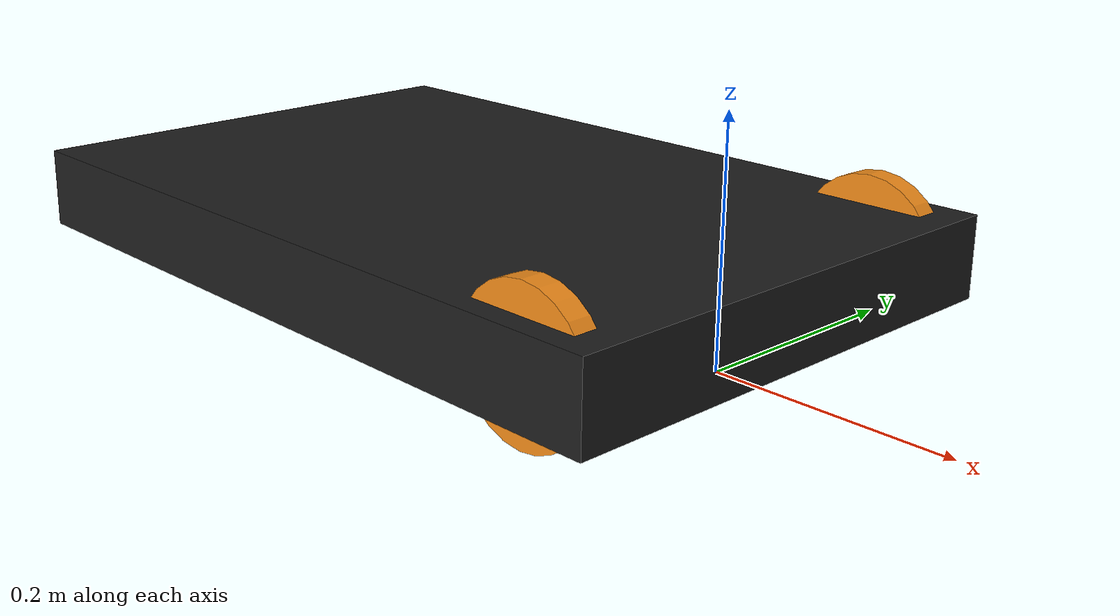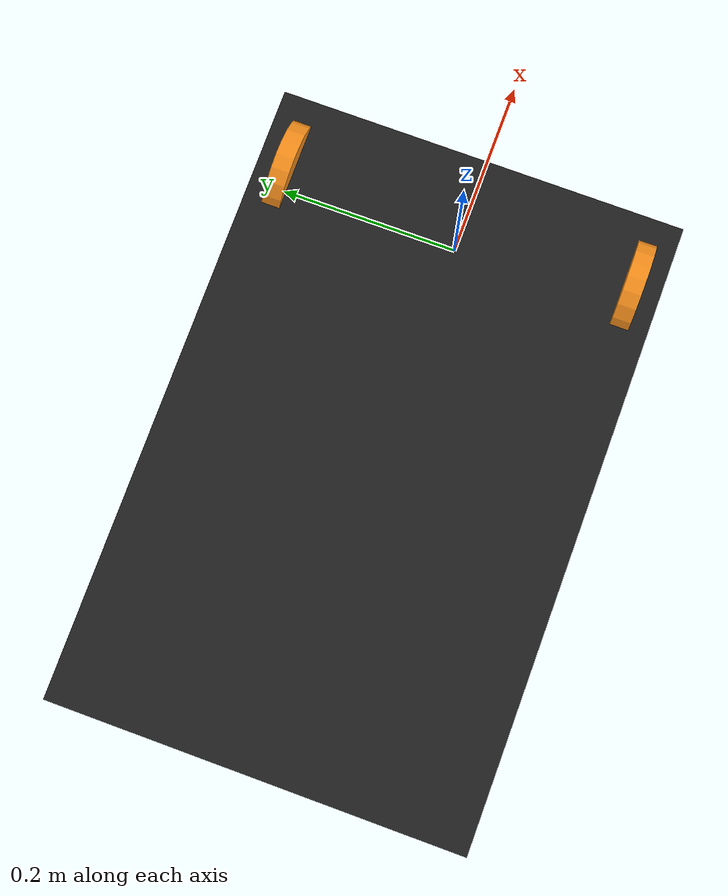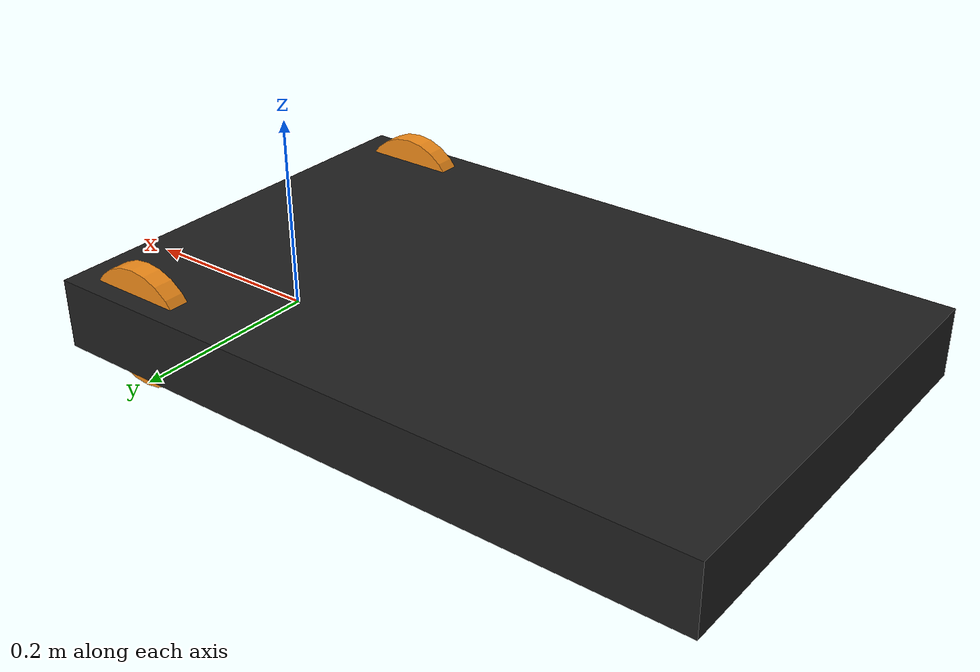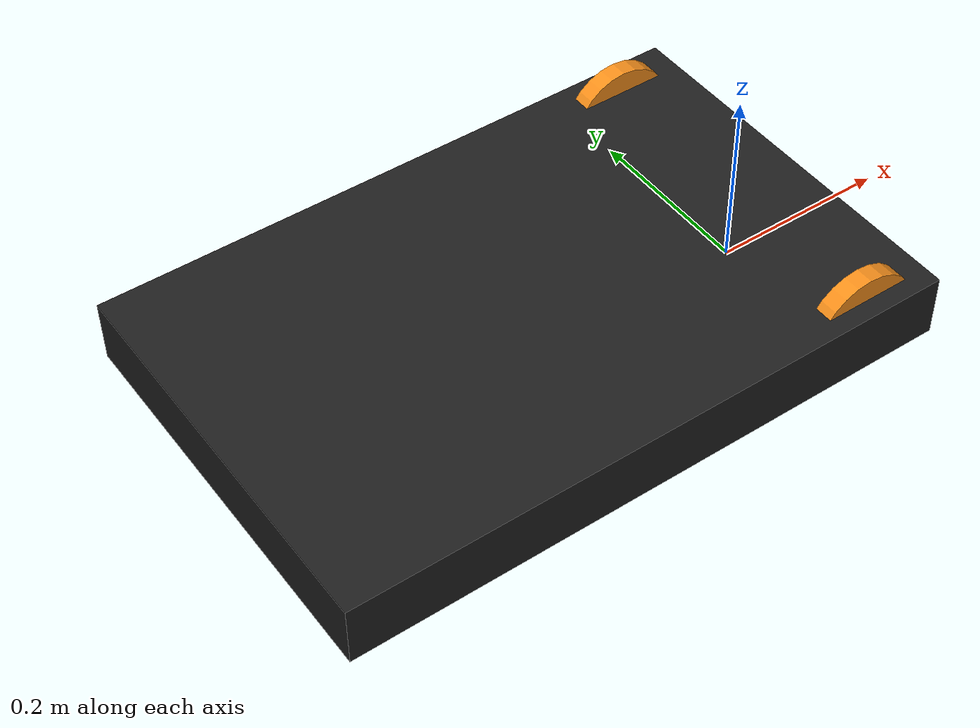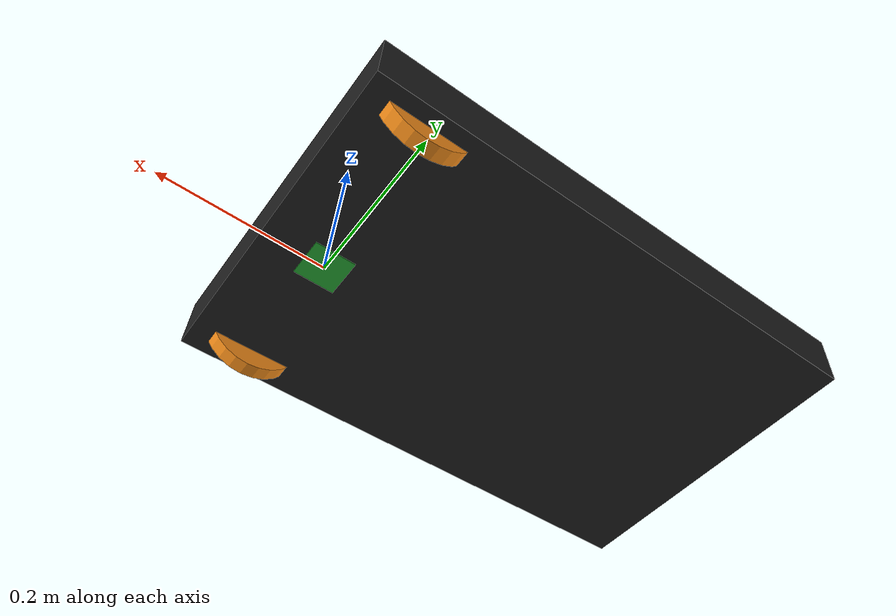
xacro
<?xml version="1.0"?>

<robot name="box_robot" xmlns:xacro="http://ros.org/wiki/xacro">

   <!-- Include all component files -->
   <xacro:include filename="$(find minireach_description)/urdf/materials.urdf.xacro" />
   <xacro:include filename="$(find minireach_description)/urdf/simple/base.urdf.xacro" />

   <!-- Add the base and wheels -->
   <base name="base" color="Black"/>

</robot>

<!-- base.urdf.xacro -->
<robot name="base" xmlns:xacro="http://ros.org/wiki/xacro">

  <!-- Define a number of dimensions using properties -->
  <property name="base_size_x" value="0.680" />
  <property name="base_size_y" value="0.445" />
  <property name="base_size_z" value="0.07" />
  <property name="wheel_length" value="0.02" />
  <property name="wheel_radius" value="0.06" />
  <property name="wheel_offset_x" value="0.265" />
  <property name="wheel_offset_y" value="0.1925" />
  <property name="wheel_offset_z" value="0" />

  <property name="PI" value="3.1415" />

  <!-- define a wheel -->
  <macro name="wheel" params="suffix parent reflect color">
    <joint name="${parent}_${suffix}_wheel_joint" type="continuous">
      <axis xyz="0 0 1" />
      <limit effort="100" velocity="100"/>
      <safety_controller k_velocity="10" />
      <origin xyz="${wheel_offset_x} ${reflect*wheel_offset_y} ${wheel_offset_z}" rpy="${reflect*PI/2} 0 0" />
      <parent link="${parent}_link"/>
      <child link="${parent}_${suffix}_wheel_link"/>
    </joint>
    <link name="${parent}_${suffix}_wheel_link">
      <visual>
        <origin xyz="0 0 0" rpy="0 0 0" />
        <geometry>
          <cylinder radius="${wheel_radius}" length="${wheel_length}"/>
        </geometry>
        <material name="${color}" />
      </visual>
    </link>
  </macro>

  <!-- The base xacro macro -->
  <macro name="base" params="name color">
    <link name="${name}_link">
      <visual>
        <origin xyz="0 0 0" rpy="0 0 0" />
        <geometry>
          <box size="${base_size_x} ${base_size_y} ${base_size_z}" />
        </geometry>
        <material name="${color}" />
      </visual>
      <collision>
        <origin xyz="0 0 0" rpy="0 0 0" />
        <geometry>
          <box size="${base_size_x} ${wheel_offset_y*2 + wheel_length} ${base_size_z}" />
        </geometry>
      </collision>
    </link>
  </macro>

  <link name="base_footprint">
      <visual>
        <origin xyz="0 0 0" rpy="0 0 0" />
        <geometry>
          <box size="0.05 0.05 0.001" />
        </geometry>
        <material name="TransparentGreen" />
      </visual>
  </link>

  <joint name="base_joint" type="fixed">
	  <origin xyz="-${wheel_offset_x} 0 ${ - wheel_offset_z + wheel_radius}" rpy="0 0 0" />
    <parent link="base_footprint"/>
    <child link="base_link" />
  </joint>

   <!-- Add the drive wheels -->
   <wheel parent="base" suffix="l" reflect="1" color="Orange"/>
   <wheel parent="base" suffix="r" reflect="-1" color="Orange"/>

</robot>
